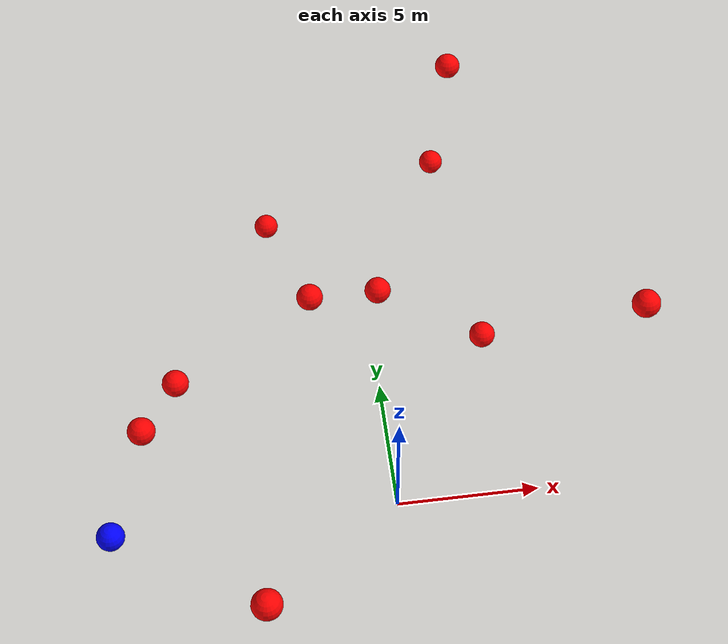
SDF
<?xml version="1.0" ?>
<sdf version="1.8">
    <world name="3d_world">
        <physics name="1ms" type="ode">
            <max_step_size>0.001</max_step_size>
            <real_time_factor>1.0</real_time_factor>
            <real_time_update_rate>1000.0</real_time_update_rate>
        </physics>
        <gravity>0 0 0</gravity>

        <plugin
            filename="gz-sim-physics-system"
            name="gz::sim::v8::systems::Physics">
        </plugin>
        <plugin
            filename="libignition-gazebo-user-commands-system.so"
            name="ignition::gazebo::systems::UserCommands">
        </plugin>
        <plugin
            filename="gz-sim-scene-broadcaster-system"
            name="gz::sim::systems::SceneBroadcaster">
        </plugin>
        <plugin
            filename="gz-sim-sensors-system"
            name="gz::sim::systems::Sensors">
            <render_engine>ogre2</render_engine>
        </plugin>

        <light type="directional" name="sun">
            <cast_shadows>true</cast_shadows>
            <pose>0 0 10 0 0 0</pose>
            <diffuse>0.8 0.8 0.8 1</diffuse>
            <specular>0.2 0.2 0.2 1</specular>
            <attenuation>
                <range>1000</range>
                <constant>0.9</constant>
                <linear>0.01</linear>
                <quadratic>0.001</quadratic>
            </attenuation>
            <direction>-0.5 0.1 -0.9</direction>
        </light>

        <!-- AGENTE -->
        <model name='agente' canonical_link='chassis'>
            <pose relative_to='world'>-10.0 0 0.0 0 0 0</pose>
            <link name='chassis'>
                <pose relative_to='__model__'>0.0 0 0.0 0 0 0</pose>
                <inertial>
                    <mass>1.14395</mass>
                    <inertia>
                        <ixx>0.095329</ixx>
                        <ixy>0</ixy>
                        <ixz>0</ixz>
                        <iyy>0.381317</iyy>
                        <iyz>0</iyz>
                        <izz>0.476646</izz>
                    </inertia>
                </inertial>
                <visual name='visual'>
                    <geometry>
                        <sphere>
                            <radius>0.5</radius>
                        </sphere>
                    </geometry>
                    <material>
                        <ambient>0.0 0.0 1.0 1</ambient>
                        <diffuse>0.0 0.0 1.0 1</diffuse>
                        <specular>0.0 0.0 1.0 1</specular>
                    </material>
                </visual>
                <collision name='collision'>
                    <geometry>
                        <sphere>
                            <radius>0.5</radius>
                        </sphere>
                    </geometry>
                </collision>
                <enable_gravity>false</enable_gravity>
            </link>

            <link name='lidar_link'>
                <pose relative_to='chassis'>0.0 0 0.1 0 0 0</pose>
                <inertial>
                    <mass>0.1</mass>
                    <inertia>
                        <ixx>0.000166667</ixx>
                        <iyy>0.000166667</iyy>
                        <izz>0.000166667</izz>
                    </inertia>
                </inertial>
                <collision name='collision'>
                    <geometry>
                        <cylinder>
                            <radius>0.05</radius>
                            <length>0.1</length>
                        </cylinder>
                    </geometry>
                </collision>
                <visual name='visual'>
                    <geometry>
                        <cylinder>
                            <radius>0.05</radius>
                            <length>0.1</length>
                        </cylinder>
                    </geometry>
                    <material>
                        <ambient>0.0 1.0 0.0 1</ambient>
                        <diffuse>0.0 1.0 0.0 1</diffuse>
                        <specular>0.0 1.0 0.0 1</specular>
                    </material>
                </visual>
                <sensor name="lidar" type="gpu_lidar">
                    <topic>scan</topic>
                    <update_rate>10</update_rate>
                    <lidar>
                        <scan>
                            <horizontal>
                                <samples>5000</samples>
                                <resolution>1</resolution>
                                <min_angle>-3.14159</min_angle>
                                <max_angle>3.14159</max_angle>
                            </horizontal>
                        </scan>
                        <range>
                            <min>0.1</min>
                            <max>10.0</max>
                            <resolution>0.01</resolution>
                        </range>
                    </lidar>
                    <visualize>true</visualize>
                    <always_on>true</always_on>
                    <update_rate>10</update_rate>
                    <pose_frame>lidar</pose_frame>
                </sensor>
                <enable_gravity>false</enable_gravity>
            </link>

            <joint name="lidar_joint" type="fixed">
                <parent>chassis</parent>
                <child>lidar_link</child>
            </joint>

            <plugin
                filename="ignition-gazebo-joint-state-publisher-system"
                name="ignition::gazebo::systems::JointStatePublisher">
            </plugin>
            <plugin
                filename="ignition-gazebo-odometry-publisher-system"
                name="ignition::gazebo::systems::OdometryPublisher">
                <dimensions>3</dimensions>
            </plugin>
            <plugin
                filename="ignition-gazebo-velocity-control-system"
                name="ignition::gazebo::systems::VelocityControl">
                <initial_linear>0.0 0 0</initial_linear>
                <initial_angular>0 0 0.0</initial_angular>
            </plugin>
            <plugin
                filename="libignition-gazebo-pose-publisher-system.so"
                name="ignition::gazebo::systems::PosePublisher">
                <topic>/agente/pose</topic>
                <frame_id>agente</frame_id>
                <update_rate>30</update_rate>
            </plugin>
        </model>

        <!-- OBSTACLE 1 -->
        <model name='obstacle_1' canonical_link='obstacle'>
            <static>false</static>
            <pose relative_to='world'>0.46 9.03 0.57 0 0 0</pose>
            <link name='obstacle'>
                <pose relative_to='__model__'>0.0 0 0.0 0 0 0</pose>
                <visual name='visual'>
                    <geometry>
                        <sphere>
                            <radius>0.50</radius>
                        </sphere>
                    </geometry>
                    <material>
                        <ambient>1.0 0.0 0.0 1</ambient>
                        <diffuse>1.0 0.0 0.0 1</diffuse>
                        <specular>1.0 0.0 0.0 1</specular>
                    </material>
                </visual>
                <collision name='collision'>
                    <geometry>
                        <sphere>
                            <radius>0.50</radius>
                        </sphere>
                    </geometry>
                </collision>
                <enable_gravity>false</enable_gravity>
            </link>

            <plugin
                filename="ignition-gazebo-velocity-control-system"
                name="ignition::gazebo::systems::VelocityControl">
                <initial_linear>0.63 -1.61 -0.10</initial_linear>
                <initial_angular>0 0 0</initial_angular>
            </plugin>

            <plugin
                filename="ignition-gazebo-odometry-publisher-system"
                name="ignition::gazebo::systems::OdometryPublisher">
                <dimensions>3</dimensions>
            </plugin>
        </model>

        <!-- OBSTACLE 2 -->
        <model name='obstacle_2' canonical_link='obstacle'>
            <static>false</static>
            <pose relative_to='world'>-7.47 6.21 -0.14 0 0 0</pose>
            <link name='obstacle'>
                <pose relative_to='__model__'>0.0 0 0.0 0 0 0</pose>
                <visual name='visual'>
                    <geometry>
                        <sphere>
                            <radius>0.50</radius>
                        </sphere>
                    </geometry>
                    <material>
                        <ambient>1.0 0.0 0.0 1</ambient>
                        <diffuse>1.0 0.0 0.0 1</diffuse>
                        <specular>1.0 0.0 0.0 1</specular>
                    </material>
                </visual>
                <collision name='collision'>
                    <geometry>
                        <sphere>
                            <radius>0.50</radius>
                        </sphere>
                    </geometry>
                </collision>
                <enable_gravity>false</enable_gravity>
            </link>

            <plugin
                filename="ignition-gazebo-velocity-control-system"
                name="ignition::gazebo::systems::VelocityControl">
                <initial_linear>1.84 -0.78 0.02</initial_linear>
                <initial_angular>0 0 0</initial_angular>
            </plugin>

            <plugin
                filename="ignition-gazebo-odometry-publisher-system"
                name="ignition::gazebo::systems::OdometryPublisher">
                <dimensions>3</dimensions>
            </plugin>
        </model>

        <!-- OBSTACLE 3 -->
        <model name='obstacle_3' canonical_link='obstacle'>
            <static>false</static>
            <pose relative_to='world'>9.13 3.91 4.96 0 0 0</pose>
            <link name='obstacle'>
                <pose relative_to='__model__'>0.0 0 0.0 0 0 0</pose>
                <visual name='visual'>
                    <geometry>
                        <sphere>
                            <radius>0.50</radius>
                        </sphere>
                    </geometry>
                    <material>
                        <ambient>1.0 0.0 0.0 1</ambient>
                        <diffuse>1.0 0.0 0.0 1</diffuse>
                        <specular>1.0 0.0 0.0 1</specular>
                    </material>
                </visual>
                <collision name='collision'>
                    <geometry>
                        <sphere>
                            <radius>0.50</radius>
                        </sphere>
                    </geometry>
                </collision>
                <enable_gravity>false</enable_gravity>
            </link>

            <plugin
                filename="ignition-gazebo-velocity-control-system"
                name="ignition::gazebo::systems::VelocityControl">
                <initial_linear>-0.33 -0.58 -0.73</initial_linear>
                <initial_angular>0 0 0</initial_angular>
            </plugin>

            <plugin
                filename="ignition-gazebo-odometry-publisher-system"
                name="ignition::gazebo::systems::OdometryPublisher">
                <dimensions>3</dimensions>
            </plugin>
        </model>

        <!-- OBSTACLE 4 -->
        <model name='obstacle_4' canonical_link='obstacle'>
            <static>false</static>
            <pose relative_to='world'>4.59 18.60 2.67 0 0 0</pose>
            <link name='obstacle'>
                <pose relative_to='__model__'>0.0 0 0.0 0 0 0</pose>
                <visual name='visual'>
                    <geometry>
                        <sphere>
                            <radius>0.50</radius>
                        </sphere>
                    </geometry>
                    <material>
                        <ambient>1.0 0.0 0.0 1</ambient>
                        <diffuse>1.0 0.0 0.0 1</diffuse>
                        <specular>1.0 0.0 0.0 1</specular>
                    </material>
                </visual>
                <collision name='collision'>
                    <geometry>
                        <sphere>
                            <radius>0.50</radius>
                        </sphere>
                    </geometry>
                </collision>
                <enable_gravity>false</enable_gravity>
            </link>

            <plugin
                filename="ignition-gazebo-velocity-control-system"
                name="ignition::gazebo::systems::VelocityControl">
                <initial_linear>0.05 -1.98 -0.28</initial_linear>
                <initial_angular>0 0 0</initial_angular>
            </plugin>

            <plugin
                filename="ignition-gazebo-odometry-publisher-system"
                name="ignition::gazebo::systems::OdometryPublisher">
                <dimensions>3</dimensions>
            </plugin>
        </model>

        <!-- OBSTACLE 5 -->
        <model name='obstacle_5' canonical_link='obstacle'>
            <static>false</static>
            <pose relative_to='world'>-8.66 3.28 1.37 0 0 0</pose>
            <link name='obstacle'>
                <pose relative_to='__model__'>0.0 0 0.0 0 0 0</pose>
                <visual name='visual'>
                    <geometry>
                        <sphere>
                            <radius>0.50</radius>
                        </sphere>
                    </geometry>
                    <material>
                        <ambient>1.0 0.0 0.0 1</ambient>
                        <diffuse>1.0 0.0 0.0 1</diffuse>
                        <specular>1.0 0.0 0.0 1</specular>
                    </material>
                </visual>
                <collision name='collision'>
                    <geometry>
                        <sphere>
                            <radius>0.50</radius>
                        </sphere>
                    </geometry>
                </collision>
                <enable_gravity>false</enable_gravity>
            </link>

            <plugin
                filename="ignition-gazebo-velocity-control-system"
                name="ignition::gazebo::systems::VelocityControl">
                <initial_linear>1.91 -0.54 -0.22</initial_linear>
                <initial_angular>0 0 0</initial_angular>
            </plugin>

            <plugin
                filename="ignition-gazebo-odometry-publisher-system"
                name="ignition::gazebo::systems::OdometryPublisher">
                <dimensions>3</dimensions>
            </plugin>
        </model>

        <!-- OBSTACLE 6 -->
        <model name='obstacle_6' canonical_link='obstacle'>
            <static>false</static>
            <pose relative_to='world'>4.41 7.87 -1.42 0 0 0</pose>
            <link name='obstacle'>
                <pose relative_to='__model__'>0.0 0 0.0 0 0 0</pose>
                <visual name='visual'>
                    <geometry>
                        <sphere>
                            <radius>0.50</radius>
                        </sphere>
                    </geometry>
                    <material>
                        <ambient>1.0 0.0 0.0 1</ambient>
                        <diffuse>1.0 0.0 0.0 1</diffuse>
                        <specular>1.0 0.0 0.0 1</specular>
                    </material>
                </visual>
                <collision name='collision'>
                    <geometry>
                        <sphere>
                            <radius>0.50</radius>
                        </sphere>
                    </geometry>
                </collision>
                <enable_gravity>false</enable_gravity>
            </link>

            <plugin
                filename="ignition-gazebo-velocity-control-system"
                name="ignition::gazebo::systems::VelocityControl">
                <initial_linear>0.36 -1.17 0.21</initial_linear>
                <initial_angular>0 0 0</initial_angular>
            </plugin>

            <plugin
                filename="ignition-gazebo-odometry-publisher-system"
                name="ignition::gazebo::systems::OdometryPublisher">
                <dimensions>3</dimensions>
            </plugin>
        </model>

        <!-- OBSTACLE 7 -->
        <model name='obstacle_7' canonical_link='obstacle'>
            <static>false</static>
            <pose relative_to='world'>-4.80 -5.65 4.85 0 0 0</pose>
            <link name='obstacle'>
                <pose relative_to='__model__'>0.0 0 0.0 0 0 0</pose>
                <visual name='visual'>
                    <geometry>
                        <sphere>
                            <radius>0.50</radius>
                        </sphere>
                    </geometry>
                    <material>
                        <ambient>1.0 0.0 0.0 1</ambient>
                        <diffuse>1.0 0.0 0.0 1</diffuse>
                        <specular>1.0 0.0 0.0 1</specular>
                    </material>
                </visual>
                <collision name='collision'>
                    <geometry>
                        <sphere>
                            <radius>0.50</radius>
                        </sphere>
                    </geometry>
                </collision>
                <enable_gravity>false</enable_gravity>
            </link>

            <plugin
                filename="ignition-gazebo-velocity-control-system"
                name="ignition::gazebo::systems::VelocityControl">
                <initial_linear>1.70 0.79 -0.68</initial_linear>
                <initial_angular>0 0 0</initial_angular>
            </plugin>

            <plugin
                filename="ignition-gazebo-odometry-publisher-system"
                name="ignition::gazebo::systems::OdometryPublisher">
                <dimensions>3</dimensions>
            </plugin>
        </model>

        <!-- OBSTACLE 8 -->
        <model name='obstacle_8' canonical_link='obstacle'>
            <static>false</static>
            <pose relative_to='world'>-2.18 8.55 1.20 0 0 0</pose>
            <link name='obstacle'>
                <pose relative_to='__model__'>0.0 0 0.0 0 0 0</pose>
                <visual name='visual'>
                    <geometry>
                        <sphere>
                            <radius>0.50</radius>
                        </sphere>
                    </geometry>
                    <material>
                        <ambient>1.0 0.0 0.0 1</ambient>
                        <diffuse>1.0 0.0 0.0 1</diffuse>
                        <specular>1.0 0.0 0.0 1</specular>
                    </material>
                </visual>
                <collision name='collision'>
                    <geometry>
                        <sphere>
                            <radius>0.50</radius>
                        </sphere>
                    </geometry>
                </collision>
                <enable_gravity>false</enable_gravity>
            </link>

            <plugin
                filename="ignition-gazebo-velocity-control-system"
                name="ignition::gazebo::systems::VelocityControl">
                <initial_linear>0.18 -1.97 -0.28</initial_linear>
                <initial_angular>0 0 0</initial_angular>
            </plugin>

            <plugin
                filename="ignition-gazebo-odometry-publisher-system"
                name="ignition::gazebo::systems::OdometryPublisher">
                <dimensions>3</dimensions>
            </plugin>
        </model>

        <!-- OBSTACLE 9 -->
        <model name='obstacle_9' canonical_link='obstacle'>
            <static>false</static>
            <pose relative_to='world'>-3.42 16.90 -4.34 0 0 0</pose>
            <link name='obstacle'>
                <pose relative_to='__model__'>0.0 0 0.0 0 0 0</pose>
                <visual name='visual'>
                    <geometry>
                        <sphere>
                            <radius>0.50</radius>
                        </sphere>
                    </geometry>
                    <material>
                        <ambient>1.0 0.0 0.0 1</ambient>
                        <diffuse>1.0 0.0 0.0 1</diffuse>
                        <specular>1.0 0.0 0.0 1</specular>
                    </material>
                </visual>
                <collision name='collision'>
                    <geometry>
                        <sphere>
                            <radius>0.50</radius>
                        </sphere>
                    </geometry>
                </collision>
                <enable_gravity>false</enable_gravity>
            </link>

            <plugin
                filename="ignition-gazebo-velocity-control-system"
                name="ignition::gazebo::systems::VelocityControl">
                <initial_linear>0.14 -1.93 0.50</initial_linear>
                <initial_angular>0 0 0</initial_angular>
            </plugin>

            <plugin
                filename="ignition-gazebo-odometry-publisher-system"
                name="ignition::gazebo::systems::OdometryPublisher">
                <dimensions>3</dimensions>
            </plugin>
        </model>

        <!-- OBSTACLE 10 -->
        <model name='obstacle_10' canonical_link='obstacle'>
            <static>false</static>
            <pose relative_to='world'>4.07 18.74 -3.23 0 0 0</pose>
            <link name='obstacle'>
                <pose relative_to='__model__'>0.0 0 0.0 0 0 0</pose>
                <visual name='visual'>
                    <geometry>
                        <sphere>
                            <radius>0.50</radius>
                        </sphere>
                    </geometry>
                    <material>
                        <ambient>1.0 0.0 0.0 1</ambient>
                        <diffuse>1.0 0.0 0.0 1</diffuse>
                        <specular>1.0 0.0 0.0 1</specular>
                    </material>
                </visual>
                <collision name='collision'>
                    <geometry>
                        <sphere>
                            <radius>0.50</radius>
                        </sphere>
                    </geometry>
                </collision>
                <enable_gravity>false</enable_gravity>
            </link>

            <plugin
                filename="ignition-gazebo-velocity-control-system"
                name="ignition::gazebo::systems::VelocityControl">
                <initial_linear>0.23 -1.96 0.34</initial_linear>
                <initial_angular>0 0 0</initial_angular>
            </plugin>

            <plugin
                filename="ignition-gazebo-odometry-publisher-system"
                name="ignition::gazebo::systems::OdometryPublisher">
                <dimensions>3</dimensions>
            </plugin>
        </model>

    </world>
</sdf>
